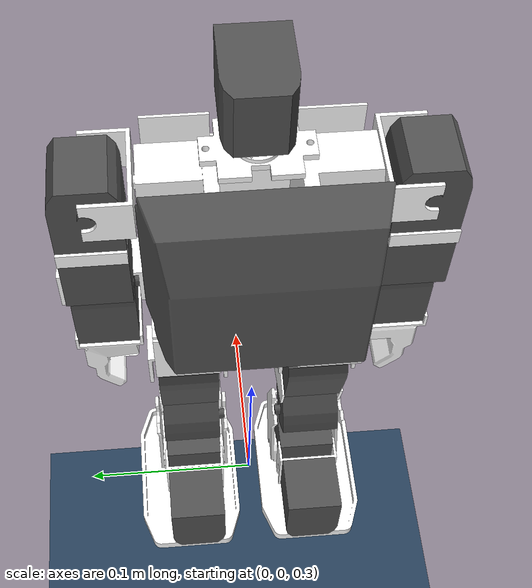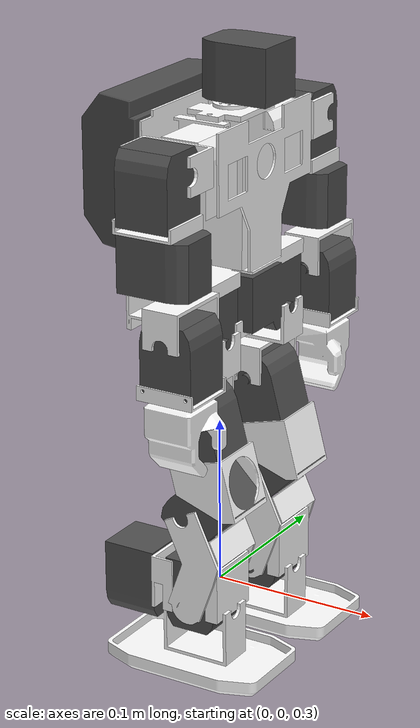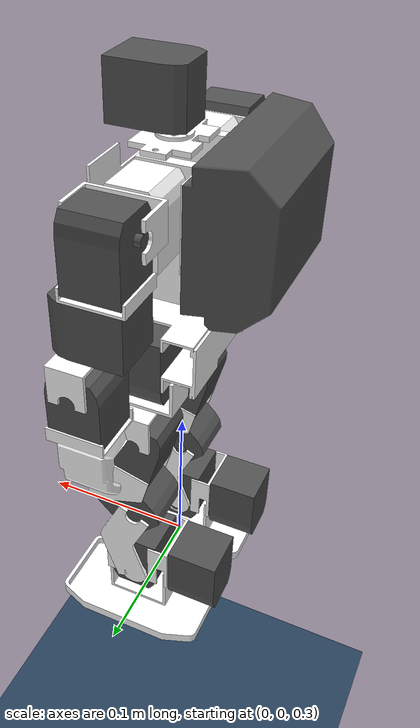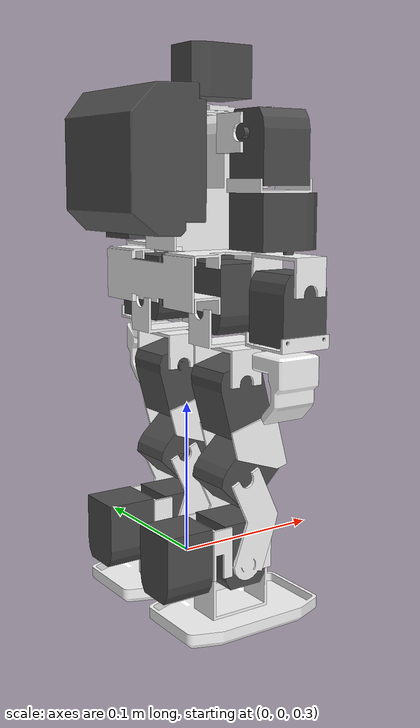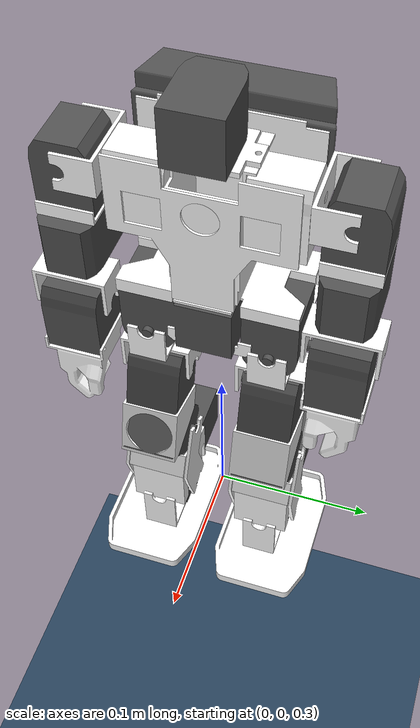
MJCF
<mujoco model="melissa_mjcf scene">
  <include file="melissa_mjcf.xml"/>

  <statistic center="0 0 0.500000" extent="0.800000"/>

  <visual>
    <headlight diffuse="0.6 0.6 0.6" ambient="0.3 0.3 0.3" specular="0 0 0"/>
    <rgba haze="0.15 0.25 0.35 1"/>
    <global azimuth="-130" elevation="-20"/>
  </visual>

  <asset>
    <texture type="skybox" builtin="gradient" rgb1="0.3 0.5 0.7" rgb2="0 0 0" width="512" height="3072"/>
    <texture type="2d" name="groundplane" builtin="checker" mark="edge" rgb1="0.2 0.3 0.4" rgb2="0.1 0.2 0.3"
      markrgb="0.8 0.8 0.8" width="300" height="300"/>
    <material name="groundplane" texture="groundplane" texuniform="true" texrepeat="5 5" reflectance="0.2"/>
  </asset>

  <worldbody>
    <!-- Ground/Environment -->
    <light pos="0 0 1.5" dir="0 0 -1" directional="true"/>
    <geom name="floor" size="0 0 0.05" type="plane" material="groundplane" group="0"/>
  </worldbody>
</mujoco>

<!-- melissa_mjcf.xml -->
<mujoco model="melissa_mjcf">
  <compiler angle="radian" meshdir="assets" autolimits="true" />

  <option timestep="0.002" iterations="30" cone="elliptic" impratio="100" />

  <default>
    <!-- textset -->
    <joint damping="0.1" armature="0.01" frictionloss="0.005"/>
    <position inheritrange="1" timeconst="0.01"/>
    <geom friction="0.4" margin="0.001" condim="3"/>
    <!-- textーtext：group=0 -->
    <default class="collision">
      <geom group="0"/>
    </default>
    <!-- text：group=1(text) -->
    <default class="visual">
      <geom contype="0" conaffinity="0" group="1"/>
    </default>
  </default>

  <asset>
    <material name="metal" rgba=".9 .95 .95 1" />
    <material name="black" rgba="0 0 0 1" />
    <material name="white" rgba="1 1 1 1" />
    <material name="gray" rgba="0.671705 0.692426 0.774270 1" />

    <mesh name="l_leg_lower" file="l_leg_lower.obj" />
    <mesh name="l_foot_middle" file="l_foot_middle.obj" />
    <mesh name="l_arm_upper" file="l_arm_upper.obj" />
    <mesh name="l_leg_upper" file="l_leg_upper.obj" />
    <mesh name="l_hipjoint_lower" file="l_hipjoint_lower.obj" />
    <mesh name="l_ankle" file="l_ankle.obj" />
    <mesh name="c_waist" file="c_waist.obj" />
    <mesh name="l_shoulder" file="l_shoulder.obj" />
    <mesh name="c_chest" file="c_chest.obj" />
    <mesh name="c_head" file="c_head.obj" />
    <mesh name="c_head_base" file="c_head_base.obj" />
    <mesh name="l_arm_upper_dec1" file="l_arm_upper_dec1.obj" />
    <mesh name="l_elbow" file="l_elbow.obj" />
    <mesh name="l_ankle_dec1" file="l_ankle_dec1.obj" />
    <mesh name="l_leg_upper_dec1" file="l_leg_upper_dec1.obj" />
    <mesh name="c_waist_dec1" file="c_waist_dec1.obj" />
    <mesh name="c_waist_dec2" file="c_waist_dec2.obj" />
    <mesh name="c_chest_dec1" file="c_chest_dec1.obj" />
    <mesh name="c_chest_dec2" file="c_chest_dec2.obj" />
    <mesh name="l_arm_lower" file="l_arm_lower.obj" />
    <mesh name="l_hand" file="l_hand.obj" />
    <mesh name="c_chest_dec3" file="c_chest_dec3.obj" />
    <mesh name="r_leg_lower" file="r_leg_lower.obj" />
    <mesh name="r_foot_middle" file="r_foot_middle.obj" />
    <mesh name="r_arm_upper" file="r_arm_upper.obj" />
    <mesh name="r_leg_upper" file="r_leg_upper.obj" />
    <mesh name="r_hipjoint_lower" file="r_hipjoint_lower.obj" />
    <mesh name="r_ankle" file="r_ankle.obj" />
    <mesh name="r_shoulder" file="r_shoulder.obj" />
    <mesh name="r_arm_upper_dec1" file="r_arm_upper_dec1.obj" />
    <mesh name="r_elbow" file="r_elbow.obj" />
    <mesh name="r_ankle_dec1" file="r_ankle_dec1.obj" />
    <mesh name="r_leg_upper_dec1" file="r_leg_upper_dec1.obj" />
    <mesh name="r_arm_lower" file="r_arm_lower.obj" />
    <mesh name="r_hand" file="r_hand.obj" />
  </asset>

  <worldbody>
    <body name="c_pelvis" pos="0 0 0.5">
      <freejoint />
      <inertial pos="0.008222 0.000001 -0.024315" mass="0.192" fullinertia="0.00019356 0.00006706 0.00018939 0 0 0" />
      <!-- text(displaytext) -->
      <geom class="visual" type="mesh" mesh="c_waist" rgba="0.314 0.314 0.314 1.0" group="1"/>
      <!-- textー(text) -->
      <geom class="collision" type="box" size="0.0115 0.046 0.014" pos="0.0095 0.0 -0.0239" quat="1.0 0.0 0.0 0.0" group="3"/>
      <body name="c_torso" pos="0.0 0.0 0.0">
        <joint name="c_spine_01_yp" type="hinge" pos="0 0 0" axis="0 0 1" range="-1.570796326794897 1.570796326794897" limited="true" margin="0.0035" armature="0.01" frictionloss="0.005" damping="0.18" />
        <inertial pos="0.008163 -0.000214 0.05305" mass="0.138" fullinertia="0.00020947 0.00008863 0.00018018 0 0 0" />
        <!-- text(displaytext) -->
        <geom class="visual" type="mesh" mesh="c_chest" rgba="1.0 1.0 1.0 1.0" group="1"/>
        <!-- textー(text) -->
        <geom class="collision" type="box" size="0.01505 0.04 0.0335" pos="0.01 0.0001 0.0435" quat="1.0 0.0 0.0 0.0" group="3"/>
        <body name="c_head" pos="0.0076 0.0 0.084298">
          <inertial pos="0.00046 -0.000008 0.001866" mass="0.001" fullinertia="0.000000000001 0.000000000001 0.000000000001 0 0 0" />
          <!-- text(displaytext) -->
          <geom class="visual" type="mesh" mesh="c_head_base" rgba="1.0 1.0 1.0 1.0" group="1"/>
          <!-- textー(text) -->
          <body name="c_head_1" pos="0.0 0.0 0.025">
            <joint name="c_neck_zy" type="hinge" pos="0 0 0" axis="0 0 1" range="-2.268928027592628 2.268928027592628" limited="true" margin="0.0035" armature="0.01" frictionloss="0.005" damping="0.18" />
            <inertial pos="0.010343 0 -0.000045" mass="0.064" fullinertia="0.00001407 0.00001728 0.00001698 0 0 0" />
            <!-- text(displaytext) -->
            <geom class="visual" type="mesh" mesh="c_head" rgba="0.314 0.314 0.314 1.0" group="1"/>
            <!-- textー(text) -->
            <geom class="collision" type="box" size="0.0215 0.016 0.01305" pos="0.0095 0.0001 0.0034" quat="1.0 0.0 0.0 0.0" group="3"/>
          </body>
        </body>
        <body name="l_shoulder" pos="0.00760076 0.075 0.068898">
          <joint name="l_shoulder_yp" type="hinge" pos="0 0 0" axis="0 1 0" range="-3.141592653589793 1.570796326794897" limited="true" margin="0.0035" armature="0.01" frictionloss="0.005" damping="0.18" />
          <inertial pos="-0.000048 -0.01572 0.000096" mass="0.009175144284" fullinertia="0.00000112 0.00000293 0.00000292 0 0 0" />
          <!-- text(displaytext) -->
          <geom class="visual" type="mesh" mesh="l_shoulder" rgba="1.0 1.0 1.0 1.0" group="1"/>
          <!-- textー(text) -->
          <geom class="collision" type="box" size="0.0215 0.0005 0.011" pos="0.0007 -0.0192 -0.0001" quat="1.0 0.0 0.0 0.0" group="3"/>
          <body name="l_arm_upper" pos="0.0 0.0 0.0">
            <joint name="l_shoulder_xr" type="hinge" pos="0 0 0" axis="1 0 0" range="-0.349065850398866 3.141592653589793" limited="true" margin="0.0035" armature="0.01" frictionloss="0.005" damping="0.18" />
            <inertial pos="0.002188 -0.000334 -0.028819" mass="0.128" fullinertia="0.00008416 0.00008848 0.0000411 0 0 0" />
            <!-- text(displaytext) -->
            <geom class="visual" type="mesh" mesh="l_arm_upper" rgba="0.314 0.314 0.314 1.0" group="1"/>
            <!-- textー(text) -->
            <geom class="collision" type="box" size="0.0115 0.011 0.03605" pos="0.0047 0.0 -0.029" quat="1.0 0.0 0.0 0.0" group="3"/>
            <body name="l_elbow" pos="0.014199 0.0003 -0.09">
              <joint name="l_elbow_zy" type="hinge" pos="0 0 0" axis="0 0 1" range="-2.268928027592628 2.268928027592628" limited="true" margin="0.0035" armature="0.01" frictionloss="0.005" damping="0.18" />
              <inertial pos="-0 -0.000001 0.01534" mass="0.009003630818" fullinertia="0.00000272 0.00000108 0.00000272 0 0 0" />
              <!-- text(displaytext) -->
              <geom class="visual" type="mesh" mesh="l_elbow" rgba="1.0 1.0 1.0 1.0" group="1"/>
              <!-- textー(text) -->
              <geom class="collision" type="box" size="0.011 0.0215 0.0005" pos="0.0006 -0.0002 0.0195" quat="1.0 0.0 0.0 0.0" group="3"/>
              <body name="l_arm_lower" pos="0.0 0.0 0.0">
                <joint name="l_elbow_yp" type="hinge" pos="0 0 0" axis="0 1 0" range="-1.74532925199433 1.74532925199433" limited="true" margin="0.0035" armature="0.01" frictionloss="0.005" damping="0.18" />
                <inertial pos="0 -0.000029 -0.010357" mass="0.064" fullinertia="0.00002082 0.00002152 0.00001749 0 0 0" />
                <!-- text(displaytext) -->
                <geom class="visual" type="mesh" mesh="l_arm_lower" rgba="0.314 0.314 0.314 1.0" group="1"/>
                <!-- textー(text) -->
                <geom class="collision" type="box" size="0.016 0.00805 0.0165" pos="-0.0002 -0.0017 -0.0094" quat="1.0 0.0 0.0 0.0" group="3"/>
                <body name="l_hand" pos="0.0 0.0 -0.025">
                  <inertial pos="0.00039 0.001962 -0.027451" mass="0.04261676532" fullinertia="0.0000167 0.00001705 0.00001263 0 0 0" />
                  <!-- text(displaytext) -->
                  <geom class="visual" type="mesh" mesh="l_hand" rgba="1.0 1.0 1.0 1.0" group="1"/>
                  <!-- textー(text) -->
                  <geom class="collision" type="box" size="0.019 0.0175 0.02195" pos="0.0014 -0.0001 -0.0318" quat="1.0 0.0 0.0 0.0" group="3"/>
                </body>
              </body>
            </body>
            <body name="l_arm_upper_1" pos="0.0 0.0 0.0">
              <inertial pos="0.00001 -0.000042 0.001632" mass="0.001" fullinertia="0.00000053 0.00000076 0.00000123 0 0 0" />
              <!-- text(displaytext) -->
              <geom class="visual" type="mesh" mesh="l_arm_upper_dec1" rgba="1.0 1.0 1.0 1.0" group="1"/>
              <!-- textー(text) -->
            </body>
          </body>
        </body>
        <body name="r_shoulder" pos="0.0076 -0.075 0.068898">
          <joint name="r_shoulder_yp" type="hinge" pos="0 0 0" axis="0 1 0" range="-3.141592653589793 1.570796326794897" limited="true" margin="0.0035" armature="0.01" frictionloss="0.005" damping="0.18" />
          <inertial pos="-0.000048 0.01572 0.000096" mass="0.009175144284" fullinertia="0.00000112 0.00000293 0.00000292 0 0 0" />
          <!-- text(displaytext) -->
          <geom class="visual" type="mesh" mesh="r_shoulder" rgba="1.0 1.0 1.0 1.0" group="1"/>
          <!-- textー(text) -->
          <geom class="collision" type="box" size="0.0215 0.0005 0.011" pos="0.0007 0.0192 -0.0001" quat="1.0 0.0 0.0 0.0" group="3"/>
          <body name="r_arm_upper" pos="0.0 -0.0 0.0">
            <joint name="r_shoulder_xr" type="hinge" pos="0 0 0" axis="1 0 0" range="-3.141592653589793 0.349065850398866" limited="true" margin="0.0035" armature="0.01" frictionloss="0.005" damping="0.18" />
            <inertial pos="0.002188 0.000334 -0.028819" mass="0.128" fullinertia="0.00008416 0.00008848 0.0000411 0 0 0" />
            <!-- text(displaytext) -->
            <geom class="visual" type="mesh" mesh="r_arm_upper" rgba="0.314 0.314 0.314 1.0" group="1"/>
            <!-- textー(text) -->
            <geom class="collision" type="box" size="0.0115 0.011 0.03605" pos="0.0047 0.0 -0.029" quat="1.0 0.0 0.0 0.0" group="3"/>
            <body name="r_elbow" pos="0.014199 -0.0003 -0.09">
              <joint name="r_elbow_zy" type="hinge" pos="0 0 0" axis="0 0 1" range="-2.268928027592628 2.268928027592628" limited="true" margin="0.0035" armature="0.01" frictionloss="0.005" damping="0.18" />
              <inertial pos="-0 0.000001 0.01534" mass="0.009003630818" fullinertia="0.00000272 0.00000108 0.00000272 0 0 0" />
              <!-- text(displaytext) -->
              <geom class="visual" type="mesh" mesh="r_elbow" rgba="1.0 1.0 1.0 1.0" group="1"/>
              <!-- textー(text) -->
              <geom class="collision" type="box" size="0.011 0.0215 0.0005" pos="0.0006 0.0002 0.0195" quat="1.0 0.0 0.0 0.0" group="3"/>
              <body name="r_arm_lower" pos="0.0 -0.0 0.0">
                <joint name="r_elbow_yp" type="hinge" pos="0 0 0" axis="0 1 0" range="-1.74532925199433 1.74532925199433" limited="true" margin="0.0035" armature="0.01" frictionloss="0.005" damping="0.18" />
                <inertial pos="0 0.000029 -0.010357" mass="0.064" fullinertia="0.00002082 0.00002152 0.00001749 0 0 0" />
                <!-- text(displaytext) -->
                <geom class="visual" type="mesh" mesh="r_arm_lower" rgba="0.314 0.314 0.314 1.0" group="1"/>
                <!-- textー(text) -->
                <geom class="collision" type="box" size="0.016 0.00805 0.0165" pos="-0.0002 0.0017 -0.0094" quat="1.0 0.0 0.0 0.0" group="3"/>
                <body name="r_hand" pos="0.0 -0.0 -0.025">
                  <inertial pos="0.00039 -0.001962 -0.027451" mass="0.04261676532" fullinertia="0.0000167 0.00001705 0.00001263 0 0 0" />
                  <!-- text(displaytext) -->
                  <geom class="visual" type="mesh" mesh="r_hand" rgba="1.0 1.0 1.0 1.0" group="1"/>
                  <!-- textー(text) -->
                  <geom class="collision" type="box" size="0.019 0.0175 0.02195" pos="0.0014 0.0001 -0.0318" quat="1.0 0.0 0.0 0.0" group="3"/>
                </body>
              </body>
            </body>
            <body name="r_arm_upper_1" pos="0.0 -0.0 0.0">
              <inertial pos="0.00001 0.000042 0.001632" mass="0.001" fullinertia="0.00000053 0.00000076 0.00000123 0 0 0" />
              <!-- text(displaytext) -->
              <geom class="visual" type="mesh" mesh="r_arm_upper_dec1" rgba="1.0 1.0 1.0 1.0" group="1"/>
              <!-- textー(text) -->
            </body>
          </body>
        </body>
        <body name="c_torso_1" pos="0.03 0.0 0.0">
          <inertial pos="-0.000837 0.000796 0.048916" mass="0.018897882204" fullinertia="0.00002585 0.00001353 0.00001615 0 0 0" />
          <!-- text(displaytext) -->
          <geom class="visual" type="mesh" mesh="c_chest_dec1" rgba="1.0 1.0 1.0 1.0" group="1"/>
          <!-- textー(text) -->
        </body>
        <body name="c_torso_2" pos="-0.02 0.0 0.0">
          <inertial pos="0.00085 0.000005 0.054249" mass="0.024663592741" fullinertia="0.00002813 0.00001547 0.00001771 0 0 0" />
          <!-- text(displaytext) -->
          <geom class="visual" type="mesh" mesh="c_chest_dec2" rgba="1.0 1.0 1.0 1.0" group="1"/>
          <!-- textー(text) -->
        </body>
        <body name="c_torso_3" pos="-0.02 0.0 0.02">
          <inertial pos="-0.020373 -0.000215 0.034654" mass="0.1" fullinertia="0.00019662 0.00016288 0.0001701 0 0 0" />
          <!-- text(displaytext) -->
          <geom class="visual" type="mesh" mesh="c_chest_dec3" rgba="0.314 0.314 0.314 1.0" group="1"/>
          <!-- textー(text) -->
          <geom class="collision" type="box" size="0.0164 0.04755 0.0378" pos="-0.0216 -0.0002 0.0341" quat="1.0 0.0 0.0 0.0" group="3"/>
        </body>
      </body>
      <body name="l_hipjoint_lower" pos="0.007 0.035 -0.035">
        <joint name="l_hipjoint_xr" type="hinge" pos="0 0 0" axis="1 0 0" range="-0.785398163397448 1.570796326794897" limited="true" margin="0.0035" armature="0.01" frictionloss="0.005" damping="0.18" />
        <inertial pos="-0 -0.000001 -0.0215" mass="0.018007252528" fullinertia="0.00000446 0.00000446 0.0000055 0 0 0" />
        <!-- text(displaytext) -->
        <geom class="visual" type="mesh" mesh="l_hipjoint_lower" rgba="1.0 1.0 1.0 1.0" group="1"/>
        <!-- textー(text) -->
        <geom class="collision" type="box" size="0.015 0.015 0.002" pos="0.0 0.0 -0.022" quat="0.9999765121843216 0.0 0.0 0.006853836858232788" group="3"/>
        <body name="l_leg_upper" pos="0.0 0.0 -0.044" quat="0.99144486137381 0 -0.130526192220052 0">
          <joint name="l_hipjoint_yp" type="hinge" pos="0 0 0" axis="0 1 0" range="-1.74532925199433 1.74532925199433" limited="true" margin="0.0035" armature="0.01" frictionloss="0.005" damping="0.18" />
          <inertial pos="-0.003284 -0.000029 -0.033482" mass="0.128" fullinertia="0.00010226 0.00010726 0.00004467 0 0 0" />
          <!-- text(displaytext) -->
          <geom class="visual" type="mesh" mesh="l_leg_upper" rgba="0.314 0.314 0.314 1.0" group="1"/>
          <!-- textー(text) -->
          <geom class="collision" type="box" size="0.0144 0.0098 0.0379" pos="-0.0048 0.0 -0.0309" quat="0.9961946982539522 -0.00939290229655972 0.08574801400269064 0.012456911806646615" group="3"/>
          <body name="l_leg_lower" pos="-0.014455 0.0 -0.057838" quat="0.953716950748227 0 0.300705799504273 0">
            <joint name="l_knee_yp" type="hinge" pos="0 0 0" axis="0 1 0" range="-0.698131700797732 2.268928027592628" limited="true" margin="0.0035" armature="0.01" frictionloss="0.005" damping="0.18" />
            <inertial pos="0.018665 -0.00003 -0.028158" mass="0.021380867066" fullinertia="0.00001386 0.00000883 0.00000916 0 0 0" />
            <!-- text(displaytext) -->
            <geom class="visual" type="mesh" mesh="l_leg_lower" rgba="1.0 1.0 1.0 1.0" group="1"/>
            <!-- textー(text) -->
            <geom class="collision" type="box" size="0.001 0.01525 0.00775" pos="0.0265 0.0 -0.0139" quat="0.9999765121843216 0.0 -0.006853836858232788 0.0" group="3"/>
            <body name="l_ankle" pos="0.022945 0.0 -0.055438" quat="0.984807753012208 0 -0.17364817766693 0">
              <joint name="l_ankle_yp" type="hinge" pos="0 0 0" axis="0 1 0" range="-1.745329251994329 2.268928027592628" limited="true" margin="0.0035" armature="0.01" frictionloss="0.005" damping="0.18" />
              <inertial pos="-0.020604 -0.000056 0.010443" mass="0.128" fullinertia="0.00004687 0.00009215 0.00008479 0 0 0" />
              <!-- text(displaytext) -->
              <geom class="visual" type="mesh" mesh="l_ankle" rgba="0.314 0.314 0.314 1.0" group="1"/>
              <!-- textー(text) -->
              <geom class="collision" type="box" size="0.03555 0.01305 0.0165" pos="-0.0196 0.0015 0.0094" quat="1.0 0.0 0.0 0.0" group="3"/>
              <body name="l_foot" pos="0.0 0.0 0.0">
                <joint name="l_ankle_xr" type="hinge" pos="0 0 0" axis="1 0 0" range="-1.570796326794897 1.570796326794897" limited="true" margin="0.0035" armature="0.01" frictionloss="0.005" damping="0.18" />
                <inertial pos="-0.000293 0.003105 -0.027913" mass="0.061653386686" fullinertia="0.00003503 0.00005261 0.00006563 0 0 0" />
                <!-- text(displaytext) -->
                <geom class="visual" type="mesh" mesh="l_foot_middle" rgba="1.0 1.0 1.0 1.0" group="1"/>
                <!-- textー(text) -->
                <geom class="collision" type="box" size="0.05 0.0315 0.005" pos="-0.0002 0.004 -0.031" quat="1.0 0.0 0.0 0.0" group="3"/>
              </body>
              <body name="l_ankle_1" pos="0.0 0.0 0.0">
                <inertial pos="-0.00329 -0.000035 0.014197" mass="0.011846329222" fullinertia="0.00000191 0.00000399 0.00000499 0 0 0" />
                <!-- text(displaytext) -->
                <geom class="visual" type="mesh" mesh="l_ankle_dec1" rgba="1.0 1.0 1.0 1.0" group="1"/>
                <!-- textー(text) -->
              </body>
            </body>
          </body>
          <body name="l_leg_upper_1" pos="0.0 0.0 0.0">
            <inertial pos="0.008859 0.000046 -0.042761" mass="0.012287186665" fullinertia="0.00000419 0.00000309 0.00000425 0 0 0" />
            <!-- text(displaytext) -->
            <geom class="visual" type="mesh" mesh="l_leg_upper_dec1" rgba="1.0 1.0 1.0 1.0" group="1"/>
            <!-- textー(text) -->
          </body>
        </body>
      </body>
      <body name="r_hipjoint_lower" pos="0.007 -0.035 -0.035">
        <joint name="r_hipjoint_xr" type="hinge" pos="0 0 0" axis="1 0 0" range="-1.570796326794897 0.785398163397448" limited="true" margin="0.0035" armature="0.01" frictionloss="0.005" damping="0.18" />
        <inertial pos="-0 0.000001 -0.0215" mass="0.018007252528" fullinertia="0.00000446 0.00000446 0.0000055 0 0 0" />
        <!-- text(displaytext) -->
        <geom class="visual" type="mesh" mesh="r_hipjoint_lower" rgba="1.0 1.0 1.0 1.0" group="1"/>
        <!-- textー(text) -->
        <geom class="collision" type="box" size="0.015 0.015 0.002" pos="0.0 0.0 -0.022" quat="0.9999765121843216 0.0 0.0 -0.006853836858232788" group="3"/>
        <body name="r_leg_upper" pos="0.0 -0.0 -0.044" quat="0.99144486137381 0 -0.130526192220052 0">
          <joint name="r_hipjoint_yp" type="hinge" pos="0 0 0" axis="0 1 0" range="-1.74532925199433 1.74532925199433" limited="true" margin="0.0035" armature="0.01" frictionloss="0.005" damping="0.18" />
          <inertial pos="-0.003284 0.000029 -0.033482" mass="0.128" fullinertia="0.00010226 0.00010726 0.00004467 0 0 0" />
          <!-- text(displaytext) -->
          <geom class="visual" type="mesh" mesh="r_leg_upper" rgba="0.314 0.314 0.314 1.0" group="1"/>
          <!-- textー(text) -->
          <geom class="collision" type="box" size="0.0144 0.0098 0.0379" pos="-0.0048 0.0 -0.0309" quat="0.9961946982539522 0.00939290229655972 0.08574801400269064 -0.012456911806646615" group="3"/>
          <body name="r_leg_lower" pos="-0.014455 -0.0 -0.057838" quat="0.953716950748227 0 0.300705799504273 0">
            <joint name="r_knee_yp" type="hinge" pos="0 0 0" axis="0 1 0" range="-1.047197551196598 2.268928027592628" limited="true" margin="0.0035" armature="0.01" frictionloss="0.005" damping="0.18" />
            <inertial pos="0.018665 0.00003 -0.028158" mass="0.021380867066" fullinertia="0.00001386 0.00000883 0.00000916 0 0 0" />
            <!-- text(displaytext) -->
            <geom class="visual" type="mesh" mesh="r_leg_lower" rgba="1.0 1.0 1.0 1.0" group="1"/>
            <!-- textー(text) -->
            <geom class="collision" type="box" size="0.001 0.01525 0.00775" pos="0.0265 0.0 -0.0139" quat="0.9999765121843216 -0.0 -0.006853836858232788 -0.0" group="3"/>
            <body name="r_ankle" pos="0.022945 -0.0 -0.055438" quat="0.984807753012208 0 -0.17364817766693 0">
              <joint name="r_ankle_yp" type="hinge" pos="0 0 0" axis="0 1 0" range="-1.745329251994329 2.268928027592628" limited="true" margin="0.0035" armature="0.01" frictionloss="0.005" damping="0.18" />
              <inertial pos="-0.020604 0.000056 0.010443" mass="0.128" fullinertia="0.00004687 0.00009215 0.00008479 0 0 0" />
              <!-- text(displaytext) -->
              <geom class="visual" type="mesh" mesh="r_ankle" rgba="0.314 0.314 0.314 1.0" group="1"/>
              <!-- textー(text) -->
              <geom class="collision" type="box" size="0.03555 0.01305 0.0165" pos="-0.0196 -0.0015 0.0094" quat="1.0 0.0 0.0 0.0" group="3"/>
              <body name="r_foot" pos="0.0 -0.0 0.0">
                <joint name="r_ankle_xr" type="hinge" pos="0 0 0" axis="1 0 0" range="-1.570796326794897 1.570796326794897" limited="true" margin="0.0035" armature="0.01" frictionloss="0.005" damping="0.18" />
                <inertial pos="-0.000293 -0.003105 -0.027913" mass="0.061653386686" fullinertia="0.00003503 0.00005261 0.00006563 0 0 0" />
                <!-- text(displaytext) -->
                <geom class="visual" type="mesh" mesh="r_foot_middle" rgba="1.0 1.0 1.0 1.0" group="1"/>
                <!-- textー(text) -->
                <geom class="collision" type="box" size="0.05 0.0315 0.005" pos="-0.0002 -0.004 -0.031" quat="1.0 0.0 0.0 0.0" group="3"/>
              </body>
              <body name="r_ankle_1" pos="0.0 -0.0 0.0">
                <inertial pos="-0.00329 0.000035 0.014197" mass="0.011846329222" fullinertia="0.00000191 0.00000399 0.00000499 0 0 0" />
                <!-- text(displaytext) -->
                <geom class="visual" type="mesh" mesh="r_ankle_dec1" rgba="1.0 1.0 1.0 1.0" group="1"/>
                <!-- textー(text) -->
              </body>
            </body>
          </body>
          <body name="r_leg_upper_1" pos="0.0 -0.0 0.0">
            <inertial pos="0.008859 -0.000046 -0.042761" mass="0.012287186665" fullinertia="0.00000419 0.00000309 0.00000425 0 0 0" />
            <!-- text(displaytext) -->
            <geom class="visual" type="mesh" mesh="r_leg_upper_dec1" rgba="1.0 1.0 1.0 1.0" group="1"/>
            <!-- textー(text) -->
          </body>
        </body>
      </body>
      <body name="c_pelvis_1" pos="0.0 0.0 0.0">
        <inertial pos="-0.010901 0 -0.011949" mass="0.039888345513" fullinertia="0.00004591 0.00002361 0.0000525 0 0 0" />
        <!-- text(displaytext) -->
        <geom class="visual" type="mesh" mesh="c_waist_dec1" rgba="1.0 1.0 1.0 1.0" group="1"/>
        <!-- textー(text) -->
      </body>
      <body name="c_pelvis_2" pos="0.025 0.0 -0.035">
        <inertial pos="0.000612 -0.00006 -0.00388" mass="0.001263363485" fullinertia="0.0000003 0.00000009 0.0000003 0 0 0" />
        <!-- text(displaytext) -->
        <geom class="visual" type="mesh" mesh="c_waist_dec2" rgba="1.0 1.0 1.0 1.0" group="1"/>
        <!-- textー(text) -->
      </body>
    </body>
  </worldbody>

  <actuator>
    <position name="c_spine_01_yp_actuator" joint="c_spine_01_yp" gear="1" kp="100" kv="1" forcerange="-3.001 3.001" forcelimited="true"/>
    <position name="c_neck_zy_actuator" joint="c_neck_zy" gear="1" kp="100" kv="1" forcerange="-3.001 3.001" forcelimited="true"/>
    <position name="l_shoulder_yp_actuator" joint="l_shoulder_yp" gear="1" kp="100" kv="1" forcerange="-3.001 3.001" forcelimited="true"/>
    <position name="l_shoulder_xr_actuator" joint="l_shoulder_xr" gear="1" kp="100" kv="1" forcerange="-3.001 3.001" forcelimited="true"/>
    <position name="l_elbow_zy_actuator" joint="l_elbow_zy" gear="1" kp="100" kv="1" forcerange="-3.001 3.001" forcelimited="true"/>
    <position name="l_elbow_yp_actuator" joint="l_elbow_yp" gear="1" kp="100" kv="1" forcerange="-3.001 3.001" forcelimited="true"/>
    <position name="r_shoulder_yp_actuator" joint="r_shoulder_yp" gear="1" kp="100" kv="1" forcerange="-3.001 3.001" forcelimited="true"/>
    <position name="r_shoulder_xr_actuator" joint="r_shoulder_xr" gear="1" kp="100" kv="1" forcerange="-3.001 3.001" forcelimited="true"/>
    <position name="r_elbow_zy_actuator" joint="r_elbow_zy" gear="1" kp="100" kv="1" forcerange="-3.001 3.001" forcelimited="true"/>
    <position name="r_elbow_yp_actuator" joint="r_elbow_yp" gear="1" kp="100" kv="1" forcerange="-3.001 3.001" forcelimited="true"/>
    <position name="l_hipjoint_xr_actuator" joint="l_hipjoint_xr" gear="1" kp="100" kv="1" forcerange="-3.001 3.001" forcelimited="true"/>
    <position name="l_hipjoint_yp_actuator" joint="l_hipjoint_yp" gear="1" kp="100" kv="1" forcerange="-3 3" forcelimited="true"/>
    <position name="l_knee_yp_actuator" joint="l_knee_yp" gear="1" kp="100" kv="1" forcerange="-3.001 3.001" forcelimited="true"/>
    <position name="l_ankle_yp_actuator" joint="l_ankle_yp" gear="1" kp="100" kv="1" forcerange="-3.001 3.001" forcelimited="true"/>
    <position name="l_ankle_xr_actuator" joint="l_ankle_xr" gear="1" kp="100" kv="1" forcerange="-3.001 3.001" forcelimited="true"/>
    <position name="r_hipjoint_xr_actuator" joint="r_hipjoint_xr" gear="1" kp="100" kv="1" forcerange="-3.001 3.001" forcelimited="true"/>
    <position name="r_hipjoint_yp_actuator" joint="r_hipjoint_yp" gear="1" kp="100" kv="1" forcerange="-3.001 3.001" forcelimited="true"/>
    <position name="r_knee_yp_actuator" joint="r_knee_yp" gear="1" kp="100" kv="1" forcerange="-3.001 3.001" forcelimited="true"/>
    <position name="r_ankle_yp_actuator" joint="r_ankle_yp" gear="1" kp="100" kv="1" forcerange="-3.001 3.001" forcelimited="true"/>
    <position name="r_ankle_xr_actuator" joint="r_ankle_xr" gear="1" kp="100" kv="1" forcerange="-3.001 3.001" forcelimited="true"/>
  </actuator>

  <sensor>
    <!-- Add sensors here if needed -->
  </sensor>
</mujoco>
